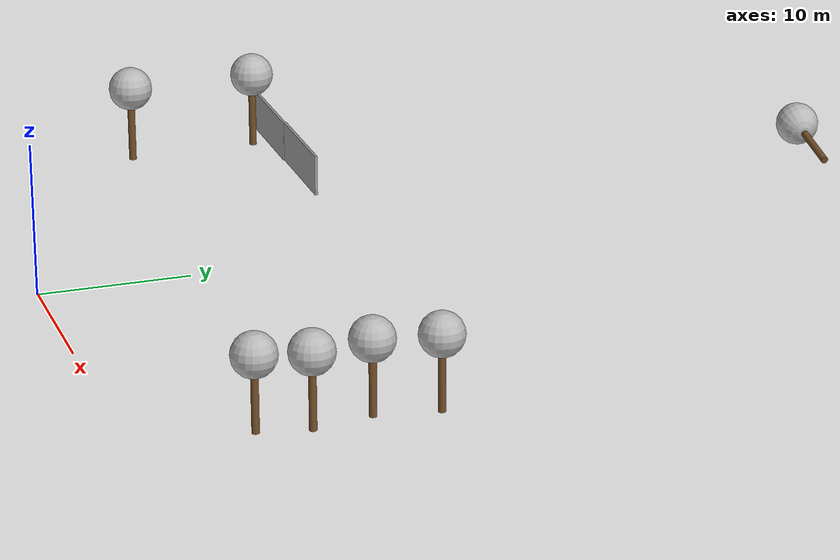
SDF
<sdf version="1.7">
 <world name="default">
  <model name="tree_simple_0_clone_0_clone_clone_1_clone_clone_1">
   <static>1</static>
   <link name="link">
    <pose>0 0 0.1 0 -0 0</pose>
    <inertial>
     <mass>666</mass>
     <inertia>
      <ixx>0.0861167</ixx>
      <ixy>0</ixy>
      <ixz>0</ixz>
      <iyy>0.0861167</iyy>
      <iyz>0</iyz>
      <izz>0.0861167</izz>
     </inertia>
    </inertial>
    <collision name="collision_trunk">
     <pose>0 0 2 0 -0 0</pose>
     <geometry><cylinder><radius>0.25</radius><length>4</length></cylinder></geometry>
     <surface>
      <contact>
       <poissons_ratio>0.347</poissons_ratio>
       <elastic_modulus>8.8e+09</elastic_modulus>
       <ode><kp>100000</kp><kd>100</kd><max_vel>100</max_vel><min_depth>0.001</min_depth></ode>
      </contact>
      <friction>
       <torsional>
        <coefficient>1</coefficient>
        <use_patch_radius>0</use_patch_radius>
        <surface_radius>0.01</surface_radius>
       </torsional>
      </friction>
     </surface>
    </collision>
    <collision name="collision_treetop">
     <pose>0 0 5.2 0 -0 0</pose>
     <geometry><sphere><radius>1.5</radius></sphere></geometry>
     <surface>
      <contact>
       <poissons_ratio>0.347</poissons_ratio>
       <elastic_modulus>8.8e+09</elastic_modulus>
       <ode><kp>100000</kp><kd>100</kd><max_vel>100</max_vel><min_depth>0.001</min_depth></ode>
      </contact>
      <friction>
       <torsional>
        <coefficient>1</coefficient>
        <use_patch_radius>0</use_patch_radius>
        <surface_radius>0.01</surface_radius>
       </torsional>
      </friction>
     </surface>
    </collision>
    <visual name="trunk">
     <pose>0 0 2 0 -0 0</pose>
     <geometry><cylinder><radius>0.25</radius><length>4</length></cylinder></geometry>
     <material>
      <script>
       <uri>model://tree_simple/scripts</uri>
       <uri>model://tree_simple/materials/textures</uri>
       <name>TreeSimple/Trunk</name>
      </script>
     </material>
    </visual>
    <visual name="treetop">
     <pose>0 0 5.2 0 -0 0</pose>
     <geometry><sphere><radius>1.5</radius></sphere></geometry>
     <material>
      <script>
       <uri>model://tree_simple/scripts</uri>
       <uri>model://tree_simple/materials/textures</uri>
       <name>TreeSimple/Treetop</name>
      </script>
     </material>
    </visual>
   </link>
   <pose>14.4798 22.0908 -5.25636 0 -0 0</pose>
  </model>
  <model name="tree_simple_0_clone_0_clone_clone_1_clone_clone_2">
   <static>1</static>
   <link name="link">
    <pose>0 0 0.1 0 -0 0</pose>
    <inertial>
     <mass>666</mass>
     <inertia>
      <ixx>0.0861167</ixx>
      <ixy>0</ixy>
      <ixz>0</ixz>
      <iyy>0.0861167</iyy>
      <iyz>0</iyz>
      <izz>0.0861167</izz>
     </inertia>
    </inertial>
    <collision name="collision_trunk">
     <pose>0 0 2 0 -0 0</pose>
     <geometry><cylinder><radius>0.25</radius><length>4</length></cylinder></geometry>
     <surface>
      <contact>
       <poissons_ratio>0.347</poissons_ratio>
       <elastic_modulus>8.8e+09</elastic_modulus>
       <ode><kp>100000</kp><kd>100</kd><max_vel>100</max_vel><min_depth>0.001</min_depth></ode>
      </contact>
      <friction>
       <torsional>
        <coefficient>1</coefficient>
        <use_patch_radius>0</use_patch_radius>
        <surface_radius>0.01</surface_radius>
       </torsional>
      </friction>
     </surface>
    </collision>
    <collision name="collision_treetop">
     <pose>0 0 5.2 0 -0 0</pose>
     <geometry><sphere><radius>1.5</radius></sphere></geometry>
     <surface>
      <contact>
       <poissons_ratio>0.347</poissons_ratio>
       <elastic_modulus>8.8e+09</elastic_modulus>
       <ode><kp>100000</kp><kd>100</kd><max_vel>100</max_vel><min_depth>0.001</min_depth></ode>
      </contact>
      <friction>
       <torsional>
        <coefficient>1</coefficient>
        <use_patch_radius>0</use_patch_radius>
        <surface_radius>0.01</surface_radius>
       </torsional>
      </friction>
     </surface>
    </collision>
    <visual name="trunk">
     <pose>0 0 2 0 -0 0</pose>
     <geometry><cylinder><radius>0.25</radius><length>4</length></cylinder></geometry>
     <material>
      <script>
       <uri>model://tree_simple/scripts</uri>
       <uri>model://tree_simple/materials/textures</uri>
       <name>TreeSimple/Trunk</name>
      </script>
     </material>
    </visual>
    <visual name="treetop">
     <pose>0 0 5.2 0 -0 0</pose>
     <geometry><sphere><radius>1.5</radius></sphere></geometry>
     <material>
      <script>
       <uri>model://tree_simple/scripts</uri>
       <uri>model://tree_simple/materials/textures</uri>
       <name>TreeSimple/Treetop</name>
      </script>
     </material>
    </visual>
   </link>
   <pose>13.9771 17.7579 -5.17122 0 -0 0</pose>
  </model>
  <model name="tree_simple_0_clone_0_clone_clone_1_clone_clone_4">
   <static>1</static>
   <link name="link">
    <pose>0 0 0.1 0 -0 0</pose>
    <inertial>
     <mass>666</mass>
     <inertia>
      <ixx>0.0861167</ixx>
      <ixy>0</ixy>
      <ixz>0</ixz>
      <iyy>0.0861167</iyy>
      <iyz>0</iyz>
      <izz>0.0861167</izz>
     </inertia>
    </inertial>
    <collision name="collision_trunk">
     <pose>0 0 2 0 -0 0</pose>
     <geometry><cylinder><radius>0.25</radius><length>4</length></cylinder></geometry>
     <surface>
      <contact>
       <poissons_ratio>0.347</poissons_ratio>
       <elastic_modulus>8.8e+09</elastic_modulus>
       <ode><kp>100000</kp><kd>100</kd><max_vel>100</max_vel><min_depth>0.001</min_depth></ode>
      </contact>
      <friction>
       <torsional>
        <coefficient>1</coefficient>
        <use_patch_radius>0</use_patch_radius>
        <surface_radius>0.01</surface_radius>
       </torsional>
      </friction>
     </surface>
    </collision>
    <collision name="collision_treetop">
     <pose>0 0 5.2 0 -0 0</pose>
     <geometry><sphere><radius>1.5</radius></sphere></geometry>
     <surface>
      <contact>
       <poissons_ratio>0.347</poissons_ratio>
       <elastic_modulus>8.8e+09</elastic_modulus>
       <ode><kp>100000</kp><kd>100</kd><max_vel>100</max_vel><min_depth>0.001</min_depth></ode>
      </contact>
      <friction>
       <torsional>
        <coefficient>1</coefficient>
        <use_patch_radius>0</use_patch_radius>
        <surface_radius>0.01</surface_radius>
       </torsional>
      </friction>
     </surface>
    </collision>
    <visual name="trunk">
     <pose>0 0 2 0 -0 0</pose>
     <geometry><cylinder><radius>0.25</radius><length>4</length></cylinder></geometry>
     <material>
      <script>
       <uri>model://tree_simple/scripts</uri>
       <uri>model://tree_simple/materials/textures</uri>
       <name>TreeSimple/Trunk</name>
      </script>
     </material>
    </visual>
    <visual name="treetop">
     <pose>0 0 5.2 0 -0 0</pose>
     <geometry><sphere><radius>1.5</radius></sphere></geometry>
     <material>
      <script>
       <uri>model://tree_simple/scripts</uri>
       <uri>model://tree_simple/materials/textures</uri>
       <name>TreeSimple/Treetop</name>
      </script>
     </material>
    </visual>
   </link>
   <pose>14.8506 13.6404 -5.11548 0 -0 0</pose>
  </model>
  <model name="tree_simple_0_clone_0_clone_clone_1_clone_clone_5">
   <static>1</static>
   <link name="link">
    <pose>0 0 0.1 0 -0 0</pose>
    <inertial>
     <mass>666</mass>
     <inertia>
      <ixx>0.0861167</ixx>
      <ixy>0</ixy>
      <ixz>0</ixz>
      <iyy>0.0861167</iyy>
      <iyz>0</iyz>
      <izz>0.0861167</izz>
     </inertia>
    </inertial>
    <collision name="collision_trunk">
     <pose>0 0 2 0 -0 0</pose>
     <geometry><cylinder><radius>0.25</radius><length>4</length></cylinder></geometry>
     <surface>
      <contact>
       <poissons_ratio>0.347</poissons_ratio>
       <elastic_modulus>8.8e+09</elastic_modulus>
       <ode><kp>100000</kp><kd>100</kd><max_vel>100</max_vel><min_depth>0.001</min_depth></ode>
      </contact>
      <friction>
       <torsional>
        <coefficient>1</coefficient>
        <use_patch_radius>0</use_patch_radius>
        <surface_radius>0.01</surface_radius>
       </torsional>
      </friction>
     </surface>
    </collision>
    <collision name="collision_treetop">
     <pose>0 0 5.2 0 -0 0</pose>
     <geometry><sphere><radius>1.5</radius></sphere></geometry>
     <surface>
      <contact>
       <poissons_ratio>0.347</poissons_ratio>
       <elastic_modulus>8.8e+09</elastic_modulus>
       <ode><kp>100000</kp><kd>100</kd><max_vel>100</max_vel><min_depth>0.001</min_depth></ode>
      </contact>
      <friction>
       <torsional>
        <coefficient>1</coefficient>
        <use_patch_radius>0</use_patch_radius>
        <surface_radius>0.01</surface_radius>
       </torsional>
      </friction>
     </surface>
    </collision>
    <visual name="trunk">
     <pose>0 0 2 0 -0 0</pose>
     <geometry><cylinder><radius>0.25</radius><length>4</length></cylinder></geometry>
     <material>
      <script>
       <uri>model://tree_simple/scripts</uri>
       <uri>model://tree_simple/materials/textures</uri>
       <name>TreeSimple/Trunk</name>
      </script>
     </material>
    </visual>
    <visual name="treetop">
     <pose>0 0 5.2 0 -0 0</pose>
     <geometry><sphere><radius>1.5</radius></sphere></geometry>
     <material>
      <script>
       <uri>model://tree_simple/scripts</uri>
       <uri>model://tree_simple/materials/textures</uri>
       <name>TreeSimple/Treetop</name>
      </script>
     </material>
    </visual>
   </link>
   <pose>13.5534 10.354 -5.37186 0 -0 0</pose>
  </model>
  <model name="tree_simple_0_clone_0_clone_clone_clone_0_clone_2">
   <static>1</static>
   <link name="link">
    <pose>0 0 0.1 0 -0 0</pose>
    <inertial>
     <mass>666</mass>
     <inertia>
      <ixx>0.0861167</ixx>
      <ixy>0</ixy>
      <ixz>0</ixz>
      <iyy>0.0861167</iyy>
      <iyz>0</iyz>
      <izz>0.0861167</izz>
     </inertia>
    </inertial>
    <collision name="collision_trunk">
     <pose>0 0 2 0 -0 0</pose>
     <geometry><cylinder><radius>0.25</radius><length>4</length></cylinder></geometry>
     <surface>
      <contact>
       <poissons_ratio>0.347</poissons_ratio>
       <elastic_modulus>8.8e+09</elastic_modulus>
       <ode><kp>100000</kp><kd>100</kd><max_vel>100</max_vel><min_depth>0.001</min_depth></ode>
      </contact>
      <friction>
       <torsional>
        <coefficient>1</coefficient>
        <use_patch_radius>0</use_patch_radius>
        <surface_radius>0.01</surface_radius>
       </torsional>
      </friction>
     </surface>
    </collision>
    <collision name="collision_treetop">
     <pose>0 0 5.2 0 -0 0</pose>
     <geometry><sphere><radius>1.5</radius></sphere></geometry>
     <surface>
      <contact>
       <poissons_ratio>0.347</poissons_ratio>
       <elastic_modulus>8.8e+09</elastic_modulus>
       <ode><kp>100000</kp><kd>100</kd><max_vel>100</max_vel><min_depth>0.001</min_depth></ode>
      </contact>
      <friction>
       <torsional>
        <coefficient>1</coefficient>
        <use_patch_radius>0</use_patch_radius>
        <surface_radius>0.01</surface_radius>
       </torsional>
      </friction>
     </surface>
    </collision>
    <visual name="trunk">
     <pose>0 0 2 0 -0 0</pose>
     <geometry><cylinder><radius>0.25</radius><length>4</length></cylinder></geometry>
     <material>
      <script>
       <uri>model://tree_simple/scripts</uri>
       <uri>model://tree_simple/materials/textures</uri>
       <name>TreeSimple/Trunk</name>
      </script>
     </material>
    </visual>
    <visual name="treetop">
     <pose>0 0 5.2 0 -0 0</pose>
     <geometry><sphere><radius>1.5</radius></sphere></geometry>
     <material>
      <script>
       <uri>model://tree_simple/scripts</uri>
       <uri>model://tree_simple/materials/textures</uri>
       <name>TreeSimple/Treetop</name>
      </script>
     </material>
    </visual>
   </link>
   <pose>-22.6697 20.545 0 0 -0 0</pose>
  </model>
  <model name="tree_simple_0_clone_0_clone_clone_clone_0_clone_3">
   <static>1</static>
   <link name="link">
    <pose>0 0 0.1 0 -0 0</pose>
    <inertial>
     <mass>666</mass>
     <inertia>
      <ixx>0.0861167</ixx>
      <ixy>0</ixy>
      <ixz>0</ixz>
      <iyy>0.0861167</iyy>
      <iyz>0</iyz>
      <izz>0.0861167</izz>
     </inertia>
    </inertial>
    <collision name="collision_trunk">
     <pose>0 0 2 0 -0 0</pose>
     <geometry><cylinder><radius>0.25</radius><length>4</length></cylinder></geometry>
     <surface>
      <contact>
       <poissons_ratio>0.347</poissons_ratio>
       <elastic_modulus>8.8e+09</elastic_modulus>
       <ode><kp>100000</kp><kd>100</kd><max_vel>100</max_vel><min_depth>0.001</min_depth></ode>
      </contact>
      <friction>
       <torsional>
        <coefficient>1</coefficient>
        <use_patch_radius>0</use_patch_radius>
        <surface_radius>0.01</surface_radius>
       </torsional>
      </friction>
     </surface>
    </collision>
    <collision name="collision_treetop">
     <pose>0 0 5.2 0 -0 0</pose>
     <geometry><sphere><radius>1.5</radius></sphere></geometry>
     <surface>
      <contact>
       <poissons_ratio>0.347</poissons_ratio>
       <elastic_modulus>8.8e+09</elastic_modulus>
       <ode><kp>100000</kp><kd>100</kd><max_vel>100</max_vel><min_depth>0.001</min_depth></ode>
      </contact>
      <friction>
       <torsional>
        <coefficient>1</coefficient>
        <use_patch_radius>0</use_patch_radius>
        <surface_radius>0.01</surface_radius>
       </torsional>
      </friction>
     </surface>
    </collision>
    <visual name="trunk">
     <pose>0 0 2 0 -0 0</pose>
     <geometry><cylinder><radius>0.25</radius><length>4</length></cylinder></geometry>
     <material>
      <script>
       <uri>model://tree_simple/scripts</uri>
       <uri>model://tree_simple/materials/textures</uri>
       <name>TreeSimple/Trunk</name>
      </script>
     </material>
    </visual>
    <visual name="treetop">
     <pose>0 0 5.2 0 -0 0</pose>
     <geometry><sphere><radius>1.5</radius></sphere></geometry>
     <material>
      <script>
       <uri>model://tree_simple/scripts</uri>
       <uri>model://tree_simple/materials/textures</uri>
       <name>TreeSimple/Treetop</name>
      </script>
     </material>
    </visual>
   </link>
   <pose>-22.4204 11.7149 0 0 -0 0</pose>
  </model>
  <model name="tree_simple_0_clone_0_clone_clone_clone_0_clone_4">
   <static>1</static>
   <link name="link">
    <pose>0 0 0.1 0 -0 0</pose>
    <inertial>
     <mass>666</mass>
     <inertia>
      <ixx>0.0861167</ixx>
      <ixy>0</ixy>
      <ixz>0</ixz>
      <iyy>0.0861167</iyy>
      <iyz>0</iyz>
      <izz>0.0861167</izz>
     </inertia>
    </inertial>
    <collision name="collision_trunk">
     <pose>0 0 2 0 -0 0</pose>
     <geometry><cylinder><radius>0.25</radius><length>4</length></cylinder></geometry>
     <surface>
      <contact>
       <poissons_ratio>0.347</poissons_ratio>
       <elastic_modulus>8.8e+09</elastic_modulus>
       <ode><kp>100000</kp><kd>100</kd><max_vel>100</max_vel><min_depth>0.001</min_depth></ode>
      </contact>
      <friction>
       <torsional>
        <coefficient>1</coefficient>
        <use_patch_radius>0</use_patch_radius>
        <surface_radius>0.01</surface_radius>
       </torsional>
      </friction>
     </surface>
    </collision>
    <collision name="collision_treetop">
     <pose>0 0 5.2 0 -0 0</pose>
     <geometry><sphere><radius>1.5</radius></sphere></geometry>
     <surface>
      <contact>
       <poissons_ratio>0.347</poissons_ratio>
       <elastic_modulus>8.8e+09</elastic_modulus>
       <ode><kp>100000</kp><kd>100</kd><max_vel>100</max_vel><min_depth>0.001</min_depth></ode>
      </contact>
      <friction>
       <torsional>
        <coefficient>1</coefficient>
        <use_patch_radius>0</use_patch_radius>
        <surface_radius>0.01</surface_radius>
       </torsional>
      </friction>
     </surface>
    </collision>
    <visual name="trunk">
     <pose>0 0 2 0 -0 0</pose>
     <geometry><cylinder><radius>0.25</radius><length>4</length></cylinder></geometry>
     <material>
      <script>
       <uri>model://tree_simple/scripts</uri>
       <uri>model://tree_simple/materials/textures</uri>
       <name>TreeSimple/Trunk</name>
      </script>
     </material>
    </visual>
    <visual name="treetop">
     <pose>0 0 5.2 0 -0 0</pose>
     <geometry><sphere><radius>1.5</radius></sphere></geometry>
     <material>
      <script>
       <uri>model://tree_simple/scripts</uri>
       <uri>model://tree_simple/materials/textures</uri>
       <name>TreeSimple/Treetop</name>
      </script>
     </material>
    </visual>
   </link>
   <pose>-6.36688 57.6528 1e-06 -0.595364 -1.32247 0.580983</pose>
  </model>
  <model name="grey_wall">
   <static>1</static>
   <link name="link">
    <pose>0 0 1.4 0 -0 0</pose>
    <collision name="collision"><geometry><box><size>7.5 0.2 2.8</size></box></geometry></collision>
    <visual name="visual">
     <cast_shadows>0</cast_shadows>
     <geometry><box><size>7.5 0.2 2.8</size></box></geometry>
     <material>
      <script>
       <uri>model://grey_wall/materials/scripts</uri>
       <uri>model://grey_wall/materials/textures</uri>
       <name>vrc/grey_wall</name>
      </script>
     </material>
    </visual>
   </link>
   <pose>-22.7299 21.8083 0 0 -0 0</pose>
  </model>
  <model name="grey_wall_0">
   <static>1</static>
   <link name="link">
    <pose>0 0 1.4 0 -0 0</pose>
    <collision name="collision"><geometry><box><size>7.5 0.2 2.8</size></box></geometry></collision>
    <visual name="visual">
     <cast_shadows>0</cast_shadows>
     <geometry><box><size>7.5 0.2 2.8</size></box></geometry>
     <material>
      <script>
       <uri>model://grey_wall/materials/scripts</uri>
       <uri>model://grey_wall/materials/textures</uri>
       <name>vrc/grey_wall</name>
      </script>
     </material>
    </visual>
   </link>
   <pose>-15.2702 21.883 0 0 -0 0</pose>
  </model>
 </world>
</sdf>
